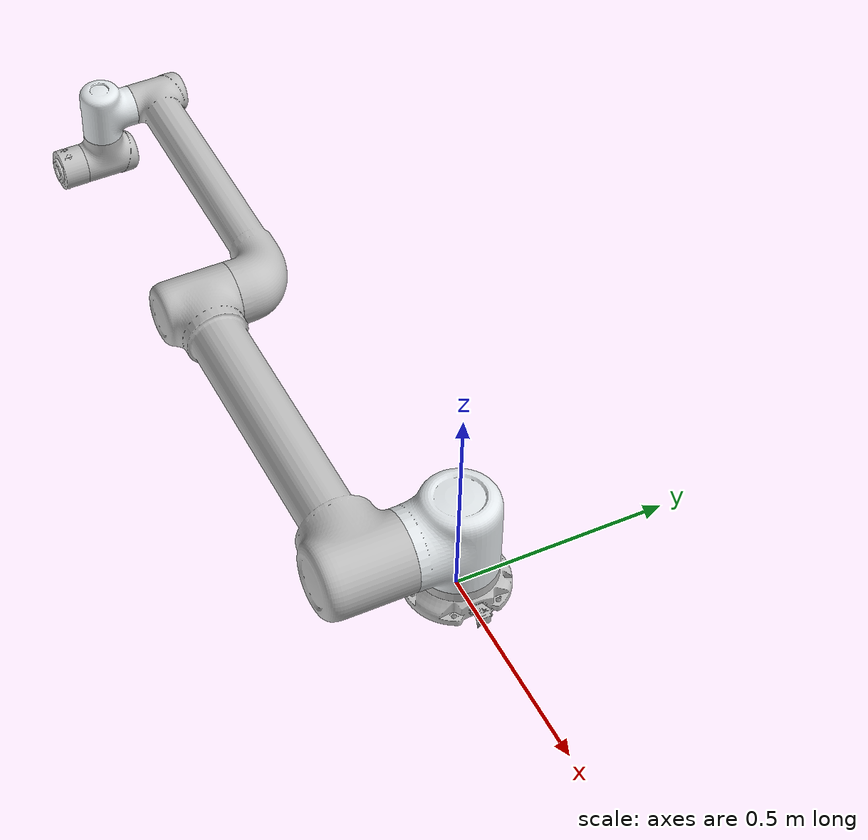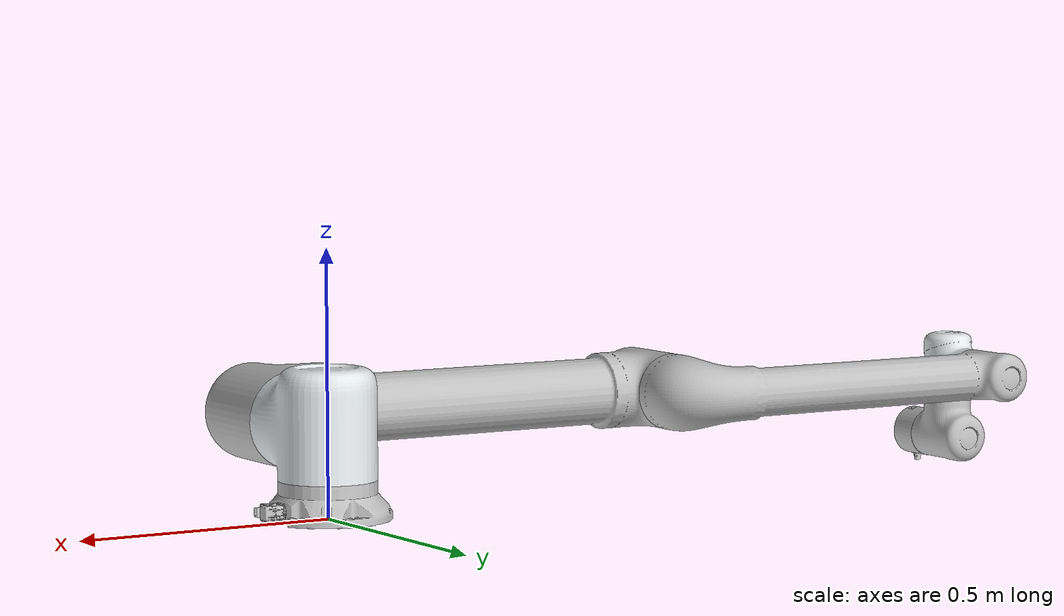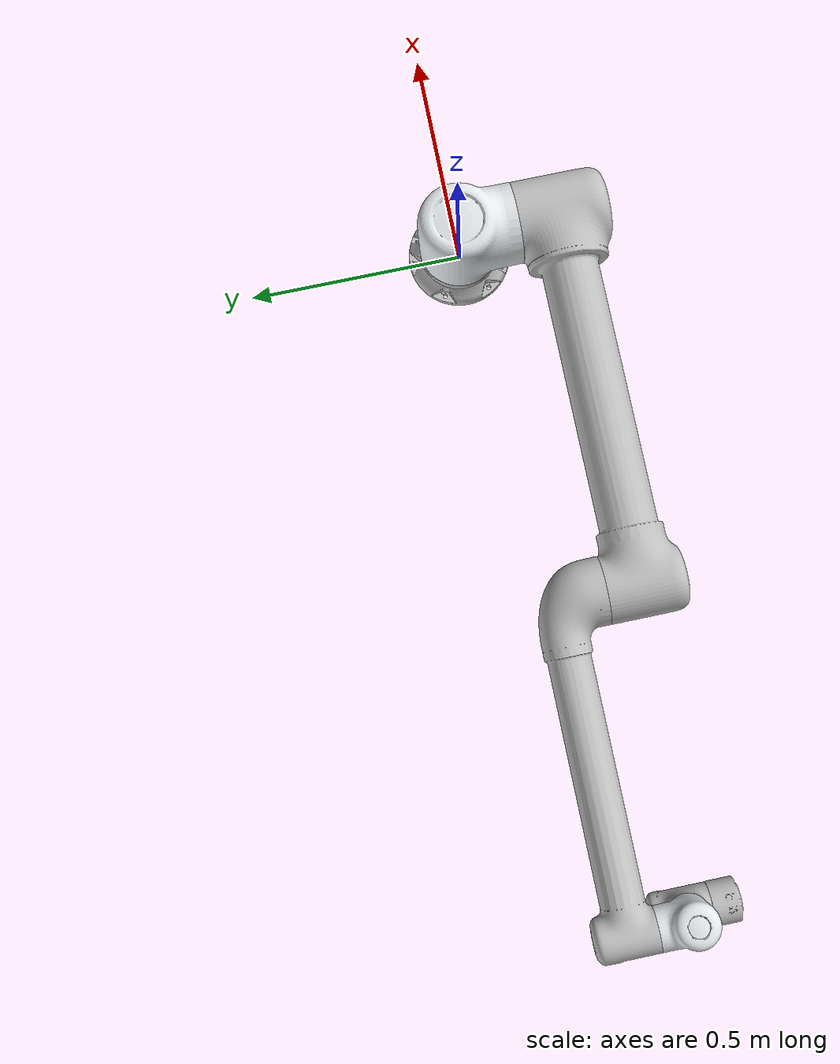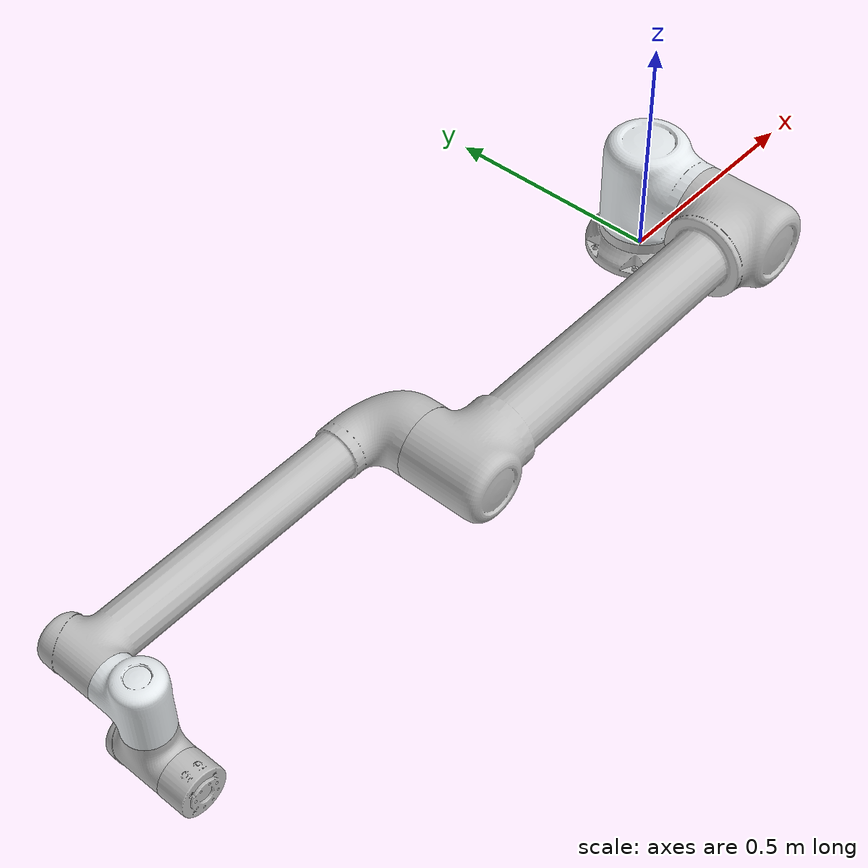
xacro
<robot
  name="S20" xmlns:xacro="http://www.ros.org/wiki/xacro">

  <xacro:arg name="hardware_plugin" default="mock_components/GenericSystem"/>
  <xacro:arg name="fixed_world" default="true"/>
  <xacro:include filename="$(find elfin_description)/urdf/materials.xacro" />

  <xacro:property name="PI" value="3.1415926535897931"/>

  <xacro:property name="density" value="3.09"/>

  <xacro:if value="$(arg fixed_world)">
    <link name="world"/>

    <joint name="world_base" type="fixed">
      <origin
        xyz="0 0 0"
        rpy="0 0 0" />
      <parent
        link="world" />
      <child
        link="elfin_base_link" />
    </joint>
  </xacro:if>

  <link name="elfin_base_link"/>

  <joint name="elfin_base_joint" type="fixed">
    <origin
      xyz="0 0 0"
      rpy="0 0 0" />
    <parent
      link="elfin_base_link" />
    <child
      link="elfin_base" />
  </joint>

  <link
    name="elfin_base">
    <inertial>
      <origin
        xyz="-0.00131650768656017 3.86349405459754E-05 0.0343213199540785"
        rpy="0 0 0" />
      <mass
        value="2.32181468230125" />
      <inertia
        ixx="0.00741739022505177"
        ixy="-9.4225231258528E-05"
        ixz="-5.45619950886553E-05"
        iyy="0.00699483778046143"
        iyz="1.30022773204213E-06"
        izz="0.0123390065438587" />
    </inertial>
    <visual>
      <origin
        xyz="0 0 0"
        rpy="0 0 0" />
      <geometry>
        <mesh
          filename="package://elfin_description/meshes/S20/elfin_base.STL" />
      </geometry>
      <material
        name="">
        <color
          rgba="0.752941176470588 0.752941176470588 0.752941176470588 1" />
      </material>
    </visual>
    <collision>
      <origin
        xyz="0 0 0"
        rpy="0 0 0" />
      <geometry>
        <mesh
          filename="package://elfin_description/meshes/S20/elfin_base.STL" />
      </geometry>
    </collision>
  </link>
  <link
    name="elfin_link1">
    <inertial>
      <origin
        xyz="-1.0792519167212E-07 -0.0224399626110038 0.00175002240516534"
        rpy="0 0 0" />
      <mass
        value="6.93455742496729" />
      <inertia
        ixx="0.0460589183335357"
        ixy="5.43718136375216E-07"
        ixz="2.96738634298801E-07"
        iyy="0.0375916708812216"
        iyz="-0.000245581780149179"
        izz="0.0394268304468804" />
    </inertial>
    <visual>
      <origin
        xyz="0 0 0"
        rpy="0 0 0" />
      <geometry>
        <mesh
          filename="package://elfin_description/meshes/S20/elfin_link1.STL" />
      </geometry>
      <material
        name="">
        <color
          rgba="0.898039215686275 0.917647058823529 0.929411764705882 1" />
      </material>
    </visual>
    <collision>
      <origin
        xyz="0 0 0"
        rpy="0 0 0" />
      <geometry>
        <mesh
          filename="package://elfin_description/meshes/S20/elfin_link1.STL" />
      </geometry>
    </collision>
  </link>
  <joint
    name="elfin_joint1"
    type="revolute">
    <origin
      xyz="0 0 0.171"
      rpy="0 0 0" />
    <parent
      link="elfin_base" />
    <child
      link="elfin_link1" />
    <axis
      xyz="0 0 1" />
   <limit
      lower="-6.28"
      upper="6.28"
      effort="200"
      velocity="1.57" />

    <dynamics damping="10.0" friction="10.0"/>
  </joint>
  <link
    name="elfin_link2">
    <inertial>
      <origin
        xyz="-0.370229694350317 9.38128437405483E-07 0.000899041883029139"
        rpy="0 0 0" />
      <mass
        value="18.8395085758056" />
      <inertia
        ixx="0.0687507132351259"
        ixy="-5.05507420279161E-07"
        ixz="-6.41343868263508E-05"
        iyy="0.411200291693132"
        iyz="-1.80729528146994E-07"
        izz="0.40138597350588" />
    </inertial>
    <visual>
      <origin
        xyz="0 0 0"
        rpy="0 0 0" />
      <geometry>
        <mesh
          filename="package://elfin_description/meshes/S20/elfin_link2.STL" />
      </geometry>
      <material
        name="">
        <color
          rgba="0.752941176470588 0.752941176470588 0.752941176470588 1" />
      </material>
    </visual>
    <collision>
      <origin
        xyz="0 0 0"
        rpy="0 0 0" />
      <geometry>
        <mesh
          filename="package://elfin_description/meshes/S20/elfin_link2.STL" />
      </geometry>
    </collision>
  </link>
  <joint
    name="elfin_joint2"
    type="revolute">
    <origin
      xyz="0 -0.2295 0"
      rpy="1.5708 0 0" />
    <parent
      link="elfin_link1" />
    <child
      link="elfin_link2" />
    <axis
      xyz="0 0 1" />
    <limit
      lower="-3.3158"
      upper="0.1745"
      effort="200"
      velocity="1.57" />

    <dynamics damping="40.0" friction="40.0"/>
  </joint>
  <link
    name="elfin_link3">
    <inertial>
      <origin
        xyz="0.310973076601113 -4.7405306624615E-09 0.0109938899740937"
        rpy="0 0 0" />
      <mass
        value="7.53508270364931" />
      <inertia
        ixx="0.0133872719937165"
        ixy="1.91460600478011E-07"
        ixz="0.00152175061957157"
        iyy="0.11837455186459"
        iyz="-2.26041817837737E-08"
        izz="0.116582348081593" />
    </inertial>
    <visual>
      <origin
        xyz="0 0 0"
        rpy="0 0 0" />
      <geometry>
        <mesh
          filename="package://elfin_description/meshes/S20/elfin_link3.STL" />
      </geometry>
      <material
        name="">
        <color
          rgba="0.752941176470588 0.752941176470588 0.752941176470588 1" />
      </material>
    </visual>
    <collision>
      <origin
        xyz="0 0 0"
        rpy="0 0 0" />
      <geometry>
        <mesh
          filename="package://elfin_description/meshes/S20/elfin_link3.STL" />
      </geometry>
    </collision>
  </link>
  <joint
    name="elfin_joint3"
    type="revolute">
    <origin
      xyz="-0.85 0 -0.1885"
      rpy="0 0 3.1416" />
    <parent
      link="elfin_link2" />
    <child
      link="elfin_link3" />
    <axis
      xyz="0 0 1" />
    <limit
      lower="-2.9319"
      upper="2.9319"
      effort="200"
      velocity="1.57" />

    <dynamics damping="10.0" friction="10.0"/>
  </joint>
  <link
    name="elfin_link4">
    <inertial>
      <origin
        xyz="8.5204157129759E-07 -0.00559612992738279 0.124499710924349"
        rpy="0 0 0" />
      <mass
        value="1.26777180180805" />
      <inertia
        ixx="0.00300888445161096"
        ixy="1.64612435809042E-08"
        ixz="3.62281943568331E-08"
        iyy="0.00214465218602862"
        iyz="9.35786831203314E-05"
        izz="0.00239761638151984" />
    </inertial>
    <visual>
      <origin
        xyz="0 0 0"
        rpy="0 0 0" />
      <geometry>
        <mesh
          filename="package://elfin_description/meshes/S20/elfin_link4.STL" />
      </geometry>
      <material
        name="">
        <color
          rgba="0.898039215686275 0.917647058823529 0.929411764705882 1" />
      </material>
    </visual>
    <collision>
      <origin
        xyz="0 0 0"
        rpy="0 0 0" />
      <geometry>
        <mesh
          filename="package://elfin_description/meshes/S20/elfin_link4.STL" />
      </geometry>
    </collision>
  </link>
  <joint
    name="elfin_joint4"
    type="revolute">
    <origin
      xyz="0.712 0 0"
      rpy="0 0 0" />
    <parent
      link="elfin_link3" />
    <child
      link="elfin_link4" />
    <axis
      xyz="0 0 1" />
   <limit
      lower="-6.28"
      upper="6.28"
      effort="104"
      velocity="1.57" />

    <dynamics damping="10.0" friction="10.0"/>
  </joint>
  <link
    name="elfin_link5">
    <inertial>
      <origin
        xyz="-1.58900480728974E-06 0.00559613044782842 0.124499711309393"
        rpy="0 0 0" />
      <mass
        value="1.26777180180803" />
      <inertia
        ixx="0.00300888445161093"
        ixy="1.64612435696446E-08"
        ixz="-3.62281943491141E-08"
        iyy="0.00214465218602857"
        iyz="-9.35786831203246E-05"
        izz="0.00239761638151982" />
    </inertial>
    <visual>
      <origin
        xyz="0 0 0"
        rpy="0 0 0" />
      <geometry>
        <mesh
          filename="package://elfin_description/meshes/S20/elfin_link5.STL" />
      </geometry>
      <material
        name="">
        <color
          rgba="0.752941176470588 0.752941176470588 0.752941176470588 1" />
      </material>
    </visual>
    <collision>
      <origin
        xyz="0 0 0"
        rpy="0 0 0" />
      <geometry>
        <mesh
          filename="package://elfin_description/meshes/S20/elfin_link5.STL" />
      </geometry>
    </collision>
  </link>
  <joint
    name="elfin_joint5"
    type="revolute">
    <origin
      xyz="0 0 0.138"
      rpy="-1.5708 0 0" />
    <parent
      link="elfin_link4" />
    <child
      link="elfin_link5" />
    <axis
      xyz="0 0 1" />
     <limit
      lower="-6.28"
      upper="6.28"
      effort="34"
      velocity="1.57" />

    <dynamics damping="25.0" friction="15.0"/>
  </joint>
  <link
    name="elfin_link6">
    <inertial>
      <origin
        xyz="-7.47115137089693E-07 0.000102435646244473 0.0904183015693256"
        rpy="0 0 0" />
      <mass
        value="0.468079508708449" />
      <inertia
        ixx="0.000412770805513074"
        ixy="1.60636639637837E-08"
        ixz="-3.02343967687703E-08"
        iyy="0.000415704740293176"
        iyz="1.46595766333508E-07"
        izz="0.000530952415351683" />
    </inertial>
    <visual>
      <origin
        xyz="0 0 0"
        rpy="0 0 0" />
      <geometry>
        <mesh
          filename="package://elfin_description/meshes/S20/elfin_link6.STL" />
      </geometry>
      <material
        name="">
        <color
          rgba="0.752941176470588 0.752941176470588 0.752941176470588 1" />
      </material>
    </visual>
    <collision>
      <origin
        xyz="0 0 0"
        rpy="0 0 0" />
      <geometry>
        <mesh
          filename="package://elfin_description/meshes/S20/elfin_link6.STL" />
      </geometry>
    </collision>
  </link>
  <joint
    name="elfin_joint6"
    type="revolute">
    <origin
      xyz="0 0 0.138"
      rpy="1.5708 0 0" />
    <parent
      link="elfin_link5" />
    <child
      link="elfin_link6" />
    <axis
      xyz="0 0 1" />
   <limit
      lower="-6.28"
      upper="6.28"
      effort="34"
      velocity="1.57" />

    <dynamics damping="25.0" friction="15.0"/>
  </joint>
  <link
    name="elfin_end_link">
  </link>
  <joint
    name="elfin_end_joint"
    type="fixed">
    <origin
      xyz="0 0 0.1257"
      rpy="0 0 3.1416" />
    <parent
      link="elfin_link6" />
    <child
      link="elfin_end_link" />
  </joint>

  <link name="elfin_dummy_gripper"/>

  <joint name="elfin_dummy_joint" type="fixed">
    <origin
      xyz="0 -0.0935 0"
      rpy="${PI/2} ${PI/2} 0" />
    <parent
      link="elfin_link6" />
    <child
      link="elfin_dummy_gripper" />
  </joint>

  <xacro:include filename="$(find elfin_description)/urdf/ros2_control.xacro"/>
  <xacro:elfin_ros2_control hardware_plugin="$(arg hardware_plugin)"/>

</robot>
